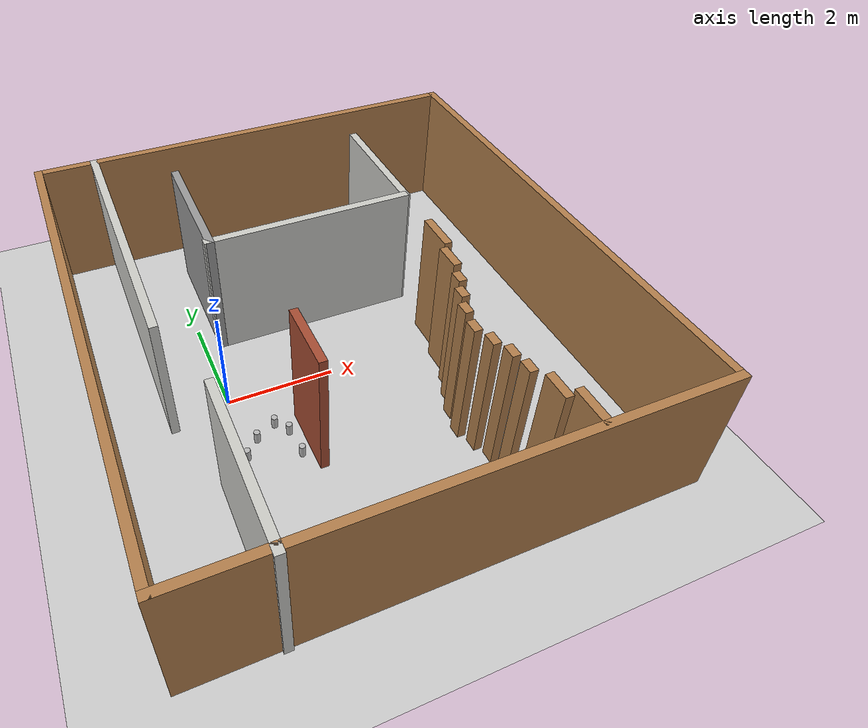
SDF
<sdf version="1.7">
 <world name="default">
  <model name="ground_plane">
   <static>1</static>
   <link name="link">
    <collision name="collision">
     <geometry><plane><normal>0 0 1</normal><size>100 100</size></plane></geometry>
     <surface><friction><ode><mu>100</mu><mu2>50</mu2></ode></friction></surface>
    </collision>
    <visual name="visual">
     <cast_shadows>0</cast_shadows>
     <geometry><plane><normal>0 0 1</normal><size>100 100</size></plane></geometry>
     <material>
      <script><uri>file://media/materials/scripts/gazebo.material</uri><name>Gazebo/Grey</name></script>
     </material>
    </visual>
   </link>
  </model>
  <gravity>0 0 -9.8</gravity>
  <magnetic_field>6e-06 2.3e-05 -4.2e-05</magnetic_field>
  <atmosphere type="adiabatic"/>
  <physics name="default_physics" default="0" type="ode">
   <max_step_size>0.001</max_step_size>
   <real_time_factor>1</real_time_factor>
   <real_time_update_rate>1000</real_time_update_rate>
  </physics>
  <scene><ambient>0.4 0.4 0.4 1</ambient><background>0.7 0.7 0.7 1</background><shadows>1</shadows></scene>
  <audio><device>default</device></audio>
  <spherical_coordinates>
   <surface_model>EARTH_WGS84</surface_model>
   <latitude_deg>0</latitude_deg>
   <longitude_deg>0</longitude_deg>
   <elevation>0</elevation>
   <heading_deg>0</heading_deg>
  </spherical_coordinates>
  <model name="comp4034_environment">
   <pose>2.19918 0.14711 0 0 -0 0</pose>
   <link name="Wall_1">
    <collision name="Wall_1_Collision">
     <geometry><box><size>8.75 0.15 2.5</size></box></geometry>
     <pose>0 0 1.25 0 -0 0</pose>
    </collision>
    <visual name="Wall_1_Visual">
     <pose>0 0 1.25 0 -0 0</pose>
     <geometry><box><size>8.75 0.15 2.5</size></box></geometry>
     <material>
      <script><uri>file://media/materials/scripts/gazebo.material</uri><name>Gazebo/Wood</name></script>
      <ambient>1 1 1 1</ambient>
     </material>
     <meta><layer>0</layer></meta>
    </visual>
    <pose>-0 -4.67766 0 0 -0 0</pose>
   </link>
   <link name="Wall_16">
    <collision name="Wall_16_Collision">
     <geometry><box><size>0.25 0.15 2.5</size></box></geometry>
     <pose>0 0 1.25 0 -0 0</pose>
    </collision>
    <visual name="Wall_16_Visual">
     <pose>0 0 1.25 0 -0 0</pose>
     <geometry><box><size>0.25 0.15 2.5</size></box></geometry>
     <material>
      <script><uri>file://media/materials/scripts/gazebo.material</uri><name>Gazebo/Wood</name></script>
      <ambient>1 1 1 1</ambient>
     </material>
     <meta><layer>0</layer></meta>
    </visual>
    <pose>1.39958 -2.65835 0 0 -0 1.5708</pose>
   </link>
   <link name="Wall_18">
    <collision name="Wall_18_Collision">
     <geometry><box><size>0.25 0.15 2.5</size></box></geometry>
     <pose>0 0 1.25 0 -0 0</pose>
    </collision>
    <visual name="Wall_18_Visual">
     <pose>0 0 1.25 0 -0 0</pose>
     <geometry><box><size>0.25 0.15 2.5</size></box></geometry>
     <material>
      <script><uri>file://media/materials/scripts/gazebo.material</uri><name>Gazebo/Wood</name></script>
      <ambient>1 1 1 1</ambient>
     </material>
     <meta><layer>0</layer></meta>
    </visual>
    <pose>1.28384 -2.30376 0 0 -0 1.5708</pose>
   </link>
   <link name="Wall_21">
    <collision name="Wall_21_Collision">
     <geometry><box><size>0.25 0.15 2.5</size></box></geometry>
     <pose>0 0 1.25 0 -0 0</pose>
    </collision>
    <visual name="Wall_21_Visual">
     <pose>0 0 1.25 0 -0 0</pose>
     <geometry><box><size>0.25 0.15 2.5</size></box></geometry>
     <material>
      <script><uri>file://media/materials/scripts/gazebo.material</uri><name>Gazebo/Wood</name></script>
      <ambient>1 1 1 1</ambient>
     </material>
     <meta><layer>0</layer></meta>
    </visual>
    <pose>1.36975 -1.89289 0 0 -0 1.5708</pose>
   </link>
   <link name="Wall_23">
    <collision name="Wall_23_Collision">
     <geometry><box><size>0.25 0.15 2.5</size></box></geometry>
     <pose>0 0 1.25 0 -0 0</pose>
    </collision>
    <visual name="Wall_23_Visual">
     <pose>0 0 1.25 0 -0 0</pose>
     <geometry><box><size>0.25 0.15 2.5</size></box></geometry>
     <material>
      <script><uri>file://media/materials/scripts/gazebo.material</uri><name>Gazebo/Wood</name></script>
      <ambient>1 1 1 1</ambient>
     </material>
     <meta><layer>0</layer></meta>
    </visual>
    <pose>1.50857 -1.53493 0 0 -0 1.5708</pose>
   </link>
   <link name="Wall_25">
    <collision name="Wall_25_Collision">
     <geometry><box><size>0.25 0.15 2.5</size></box></geometry>
     <pose>0 0 1.25 0 -0 0</pose>
    </collision>
    <visual name="Wall_25_Visual">
     <pose>0 0 1.25 0 -0 0</pose>
     <geometry><box><size>0.25 0.15 2.5</size></box></geometry>
     <material>
      <script><uri>file://media/materials/scripts/gazebo.material</uri><name>Gazebo/Wood</name></script>
      <ambient>1 1 1 1</ambient>
     </material>
     <meta><layer>0</layer></meta>
    </visual>
    <pose>1.65732 -1.18034 0 0 -0 1.5708</pose>
   </link>
   <link name="Wall_27">
    <collision name="Wall_27_Collision">
     <geometry><box><size>0.5 0.15 2.5</size></box></geometry>
     <pose>0 0 1.25 0 -0 0</pose>
    </collision>
    <visual name="Wall_27_Visual">
     <pose>0 0 1.25 0 -0 0</pose>
     <geometry><box><size>0.5 0.15 2.5</size></box></geometry>
     <material>
      <script><uri>file://media/materials/scripts/gazebo.material</uri><name>Gazebo/Wood</name></script>
      <ambient>1 1 1 1</ambient>
     </material>
     <meta><layer>0</layer></meta>
    </visual>
    <pose>1.78619 -0.651034 0 0 -0 1.5708</pose>
   </link>
   <link name="Wall_3">
    <collision name="Wall_3_Collision">
     <geometry><box><size>9.5529 0.15 2.5</size></box></geometry>
     <pose>0 0 1.25 0 -0 0</pose>
    </collision>
    <visual name="Wall_3_Visual">
     <pose>0 0 1.25 0 -0 0</pose>
     <geometry><box><size>9.5529 0.15 2.5</size></box></geometry>
     <material>
      <script><uri>file://media/materials/scripts/gazebo.material</uri><name>Gazebo/Wood</name></script>
      <ambient>1 1 1 1</ambient>
     </material>
     <meta><layer>0</layer></meta>
    </visual>
    <pose>-4.3 0.023792 0 0 -0 1.5708</pose>
   </link>
   <link name="Wall_30">
    <collision name="Wall_30_Collision">
     <geometry><box><size>0.75 0.15 2.5</size></box></geometry>
     <pose>0 0 1.25 0 -0 0</pose>
    </collision>
    <visual name="Wall_30_Visual">
     <pose>0 0 1.25 0 -0 0</pose>
     <geometry><box><size>0.75 0.15 2.5</size></box></geometry>
     <material>
      <script><uri>file://media/materials/scripts/gazebo.material</uri><name>Gazebo/Wood</name></script>
      <ambient>1 1 1 1</ambient>
     </material>
     <meta><layer>0</layer></meta>
    </visual>
    <pose>1.92912 0.051937 0 0 -0 1.5708</pose>
   </link>
   <link name="Wall_32">
    <collision name="Wall_32_Collision">
     <geometry><box><size>2.5 0.15 2.5</size></box></geometry>
     <pose>0 0 1.25 0 -0 0</pose>
    </collision>
    <visual name="Wall_32_Visual">
     <pose>0 0 1.25 0 -0 0</pose>
     <geometry><box><size>2.5 0.15 2.5</size></box></geometry>
     <material>
      <script><uri>file://media/materials/scripts/gazebo.material</uri><name>Gazebo/CeilingTiled</name></script>
      <ambient>0.760784 0.662745 0.627451 1</ambient>
     </material>
     <meta><layer>0</layer></meta>
    </visual>
    <pose>1.9255 2.52077 0 0 -0 1.5708</pose>
   </link>
   <link name="Wall_34">
    <collision name="Wall_34_Collision">
     <geometry><box><size>3.92584 0.15 2.5</size></box></geometry>
     <pose>0 0 1.25 0 -0 0</pose>
    </collision>
    <visual name="Wall_34_Visual">
     <pose>0 0 1.25 0 -0 0</pose>
     <geometry><box><size>3.92584 0.15 2.5</size></box></geometry>
     <material>
      <script><uri>file://media/materials/scripts/gazebo.material</uri><name>Gazebo/CeilingTiled</name></script>
      <ambient>0.760784 0.662745 0.627451 1</ambient>
     </material>
     <meta><layer>0</layer></meta>
    </visual>
    <pose>0.007157 1.34577 0 0 -0 3.14159</pose>
   </link>
   <link name="Wall_4">
    <collision name="Wall_4_Collision">
     <geometry><box><size>8.75 0.15 2.5</size></box></geometry>
     <pose>0 0 1.25 0 -0 0</pose>
    </collision>
    <visual name="Wall_4_Visual">
     <pose>0 0 1.25 0 -0 0</pose>
     <geometry><box><size>8.75 0.15 2.5</size></box></geometry>
     <material>
      <script><uri>file://media/materials/scripts/gazebo.material</uri><name>Gazebo/Wood</name></script>
      <ambient>1 1 1 1</ambient>
     </material>
     <meta><layer>0</layer></meta>
    </visual>
    <pose>-0 4.72524 0 0 -0 0</pose>
   </link>
   <link name="Wall_40">
    <collision name="Wall_40_Collision">
     <geometry><box><size>1.25 0.15 2.5</size></box></geometry>
     <pose>0 0 1.25 0 -0 0</pose>
    </collision>
    <visual name="Wall_40_Visual">
     <pose>0 0 1.25 0 -0 0</pose>
     <geometry><box><size>1.25 0.15 2.5</size></box></geometry>
     <material>
      <script><uri>file://media/materials/scripts/gazebo.material</uri><name>Gazebo/Bricks</name></script>
      <ambient>1 1 1 1</ambient>
     </material>
     <meta><layer>0</layer></meta>
    </visual>
    <pose>-1.12606 -1.50275 0 0 -0 -1.5708</pose>
   </link>
   <link name="Wall_45">
    <collision name="Wall_45_Collision">
     <geometry><box><size>0.5 0.15 2.5</size></box></geometry>
     <pose>0 0 1.25 0 -0 0</pose>
    </collision>
    <visual name="Wall_45_Visual">
     <pose>0 0 1.25 0 -0 0</pose>
     <geometry><box><size>0.5 0.15 2.5</size></box></geometry>
     <material>
      <script><uri>file://media/materials/scripts/gazebo.material</uri><name>Gazebo/Wood</name></script>
      <ambient>1 1 1 1</ambient>
     </material>
     <meta><layer>0</layer></meta>
    </visual>
    <pose>1.76668 -3.82995 0 0 -0 1.5708</pose>
   </link>
   <link name="Wall_5">
    <collision name="Wall_5_Collision">
     <geometry><box><size>9.5 0.15 2.5</size></box></geometry>
     <pose>0 0 1.25 0 -0 0</pose>
    </collision>
    <visual name="Wall_5_Visual">
     <pose>0 0 1.25 0 -0 0</pose>
     <geometry><box><size>9.5 0.15 2.5</size></box></geometry>
     <material>
      <script><uri>file://media/materials/scripts/gazebo.material</uri><name>Gazebo/Wood</name></script>
      <ambient>1 1 1 1</ambient>
     </material>
     <meta><layer>0</layer></meta>
    </visual>
    <pose>4.3 0.050242 0 0 -0 -1.5708</pose>
   </link>
   <link name="Wall_52">
    <collision name="Wall_52_Collision">
     <geometry><box><size>0.75 0.15 2.5</size></box></geometry>
     <pose>0 0 1.25 0 -0 0</pose>
    </collision>
    <visual name="Wall_52_Visual">
     <pose>0 0 1.25 0 -0 0</pose>
     <geometry><box><size>0.75 0.15 2.5</size></box></geometry>
     <material>
      <script><uri>file://media/materials/scripts/gazebo.material</uri><name>Gazebo/Wood</name></script>
      <ambient>1 1 1 1</ambient>
     </material>
     <meta><layer>0</layer></meta>
    </visual>
    <pose>1.98668 -4.35495 0 0 -0 1.5708</pose>
   </link>
   <link name="Wall_56">
    <collision name="Wall_56_Collision">
     <geometry><box><size>0.25 0.15 2.5</size></box></geometry>
     <pose>0 0 1.25 0 -0 0</pose>
    </collision>
    <visual name="Wall_56_Visual">
     <pose>0 0 1.25 0 -0 0</pose>
     <geometry><box><size>0.25 0.15 2.5</size></box></geometry>
     <material>
      <script><uri>file://media/materials/scripts/gazebo.material</uri><name>Gazebo/Wood</name></script>
      <ambient>1 1 1 1</ambient>
     </material>
     <meta><layer>0</layer></meta>
    </visual>
    <pose>1.52668 -2.98495 0 0 -0 -1.5708</pose>
   </link>
   <link name="Wall_58">
    <collision name="Wall_58_Collision">
     <geometry><box><size>0.25 0.15 2.5</size></box></geometry>
     <pose>0 0 1.25 0 -0 0</pose>
    </collision>
    <visual name="Wall_58_Visual">
     <pose>0 0 1.25 0 -0 0</pose>
     <geometry><box><size>0.25 0.15 2.5</size></box></geometry>
     <material>
      <script><uri>file://media/materials/scripts/gazebo.material</uri><name>Gazebo/Wood</name></script>
      <ambient>1 1 1 1</ambient>
     </material>
     <meta><layer>0</layer></meta>
    </visual>
    <pose>1.58668 -3.34495 0 0 -0 -1.5708</pose>
   </link>
   <link name="Wall_60">
    <collision name="Wall_60_Collision">
     <geometry><box><size>2.5 0.15 2.5</size></box></geometry>
     <pose>0 0 1.25 0 -0 0</pose>
    </collision>
    <visual name="Wall_60_Visual">
     <pose>0 0 1.25 0 -0 0</pose>
     <geometry><box><size>2.5 0.15 2.5</size></box></geometry>
     <material>
      <script><uri>file://media/materials/scripts/gazebo.material</uri><name>Gazebo/Grey</name></script>
      <ambient>1 1 1 1</ambient>
     </material>
     <meta><layer>0</layer></meta>
    </visual>
    <pose>-1.85035 2.52077 0 0 -0 1.5708</pose>
   </link>
   <link name="Wall_7">
    <collision name="Wall_7_Collision">
     <geometry><box><size>5.25 0.15 2.5</size></box></geometry>
     <pose>0 0 1.25 0 -0 0</pose>
    </collision>
    <visual name="Wall_7_Visual">
     <pose>0 0 1.25 0 -0 0</pose>
     <geometry><box><size>5.25 0.15 2.5</size></box></geometry>
     <material>
      <script><uri>file://media/materials/scripts/gazebo.material</uri><name>Gazebo/CeilingTiled</name></script>
      <ambient>0.760784 0.662745 0.627451 1</ambient>
     </material>
     <meta><layer>0</layer></meta>
    </visual>
    <pose>-3.23089 2.17626 0 0 -0 -1.5708</pose>
   </link>
   <link name="Wall_9">
    <collision name="Wall_9_Collision">
     <geometry><box><size>3 0.15 2.5</size></box></geometry>
     <pose>0 0 1.25 0 -0 0</pose>
    </collision>
    <visual name="Wall_9_Visual">
     <pose>0 0 1.25 0 -0 0</pose>
     <geometry><box><size>3 0.15 2.5</size></box></geometry>
     <material>
      <script><uri>file://media/materials/scripts/gazebo.material</uri><name>Gazebo/CeilingTiled</name></script>
      <ambient>0.760784 0.662745 0.627451 1</ambient>
     </material>
     <meta><layer>0</layer></meta>
    </visual>
    <pose>-2.74464 -3.30126 0 0 -0 1.5708</pose>
   </link>
   <static>1</static>
  </model>
  <model name="beer">
   <link name="link">
    <pose>0 0 0.115 0 -0 0</pose>
    <inertial>
     <mass>0.39</mass>
     <inertia><ixx>0.00058</ixx><ixy>0</ixy><ixz>0</ixz><iyy>0.00058</iyy><iyz>0</iyz><izz>0.00019</izz></inertia>
    </inertial>
    <collision name="collision">
     <geometry><cylinder><radius>0.055</radius><length>0.23</length></cylinder></geometry>
    </collision>
    <visual name="visual">
     <geometry><cylinder><radius>0.055</radius><length>0.23</length></cylinder></geometry>
     <material>
      <script>
       <uri>model://beer/materials/scripts</uri>
       <uri>model://beer/materials/textures</uri>
       <name>Beer/Diffuse</name>
      </script>
     </material>
    </visual>
   </link>
   <pose>0.213787 -1.0175 -2e-06 1e-06 0 -3.8e-05</pose>
  </model>
  <model name="beer_0">
   <link name="link">
    <pose>0 0 0.115 0 -0 0</pose>
    <inertial>
     <mass>0.39</mass>
     <inertia><ixx>0.00058</ixx><ixy>0</ixy><ixz>0</ixz><iyy>0.00058</iyy><iyz>0</iyz><izz>0.00019</izz></inertia>
    </inertial>
    <collision name="collision">
     <geometry><cylinder><radius>0.055</radius><length>0.23</length></cylinder></geometry>
    </collision>
    <visual name="visual">
     <geometry><cylinder><radius>0.055</radius><length>0.23</length></cylinder></geometry>
     <material>
      <script>
       <uri>model://beer/materials/scripts</uri>
       <uri>model://beer/materials/textures</uri>
       <name>Beer/Diffuse</name>
      </script>
     </material>
    </visual>
   </link>
   <pose>2.29627 2.79932 -7e-06 -0 -0 -3.9e-05</pose>
  </model>
  <model name="beer_1">
   <link name="link">
    <pose>0 0 0.115 0 -0 0</pose>
    <inertial>
     <mass>0.39</mass>
     <inertia><ixx>0.00058</ixx><ixy>0</ixy><ixz>0</ixz><iyy>0.00058</iyy><iyz>0</iyz><izz>0.00019</izz></inertia>
    </inertial>
    <collision name="collision">
     <geometry><cylinder><radius>0.055</radius><length>0.23</length></cylinder></geometry>
    </collision>
    <visual name="visual">
     <geometry><cylinder><radius>0.055</radius><length>0.23</length></cylinder></geometry>
     <material>
      <script>
       <uri>model://beer/materials/scripts</uri>
       <uri>model://beer/materials/textures</uri>
       <name>Beer/Diffuse</name>
      </script>
     </material>
    </visual>
   </link>
   <pose>-0.055249 -1.32092 -2e-06 1e-06 0 -4e-05</pose>
  </model>
  <model name="beer_3">
   <link name="link">
    <pose>0 0 0.115 0 -0 0</pose>
    <inertial>
     <mass>0.39</mass>
     <inertia><ixx>0.00058</ixx><ixy>0</ixy><ixz>0</ixz><iyy>0.00058</iyy><iyz>0</iyz><izz>0.00019</izz></inertia>
    </inertial>
    <collision name="collision">
     <geometry><cylinder><radius>0.055</radius><length>0.23</length></cylinder></geometry>
    </collision>
    <visual name="visual">
     <geometry><cylinder><radius>0.055</radius><length>0.23</length></cylinder></geometry>
     <material>
      <script>
       <uri>model://beer/materials/scripts</uri>
       <uri>model://beer/materials/textures</uri>
       <name>Beer/Diffuse</name>
      </script>
     </material>
    </visual>
   </link>
   <pose>2.50304 2.62456 -7e-06 -0 -0 -3.9e-05</pose>
  </model>
  <model name="beer_4">
   <link name="link">
    <pose>0 0 0.115 0 -0 0</pose>
    <inertial>
     <mass>0.39</mass>
     <inertia><ixx>0.00058</ixx><ixy>0</ixy><ixz>0</ixz><iyy>0.00058</iyy><iyz>0</iyz><izz>0.00019</izz></inertia>
    </inertial>
    <collision name="collision">
     <geometry><cylinder><radius>0.055</radius><length>0.23</length></cylinder></geometry>
    </collision>
    <visual name="visual">
     <geometry><cylinder><radius>0.055</radius><length>0.23</length></cylinder></geometry>
     <material>
      <script>
       <uri>model://beer/materials/scripts</uri>
       <uri>model://beer/materials/textures</uri>
       <name>Beer/Diffuse</name>
      </script>
     </material>
    </visual>
   </link>
   <pose>0.594461 -0.821879 -7e-06 0 0 -4e-05</pose>
  </model>
  <model name="beer_5">
   <link name="link">
    <pose>0 0 0.115 0 -0 0</pose>
    <inertial>
     <mass>0.39</mass>
     <inertia><ixx>0.00058</ixx><ixy>0</ixy><ixz>0</ixz><iyy>0.00058</iyy><iyz>0</iyz><izz>0.00019</izz></inertia>
    </inertial>
    <collision name="collision">
     <geometry><cylinder><radius>0.055</radius><length>0.23</length></cylinder></geometry>
    </collision>
    <visual name="visual">
     <geometry><cylinder><radius>0.055</radius><length>0.23</length></cylinder></geometry>
     <material>
      <script>
       <uri>model://beer/materials/scripts</uri>
       <uri>model://beer/materials/textures</uri>
       <name>Beer/Diffuse</name>
      </script>
     </material>
    </visual>
   </link>
   <pose>0.821637 -1.58876 -2e-06 1e-06 0 -4.1e-05</pose>
  </model>
  <model name="beer_6">
   <link name="link">
    <pose>0 0 0.115 0 -0 0</pose>
    <inertial>
     <mass>0.39</mass>
     <inertia><ixx>0.00058</ixx><ixy>0</ixy><ixz>0</ixz><iyy>0.00058</iyy><iyz>0</iyz><izz>0.00019</izz></inertia>
    </inertial>
    <collision name="collision">
     <geometry><cylinder><radius>0.055</radius><length>0.23</length></cylinder></geometry>
    </collision>
    <visual name="visual">
     <geometry><cylinder><radius>0.055</radius><length>0.23</length></cylinder></geometry>
     <material>
      <script>
       <uri>model://beer/materials/scripts</uri>
       <uri>model://beer/materials/textures</uri>
       <name>Beer/Diffuse</name>
      </script>
     </material>
    </visual>
   </link>
   <pose>2.80314 2.92534 -7e-06 -0 -0 -3.9e-05</pose>
  </model>
  <light name="user_point_light_0" type="point">
   <pose>2.58655 2.83107 1 0 -0 0</pose>
   <diffuse>0.5 0.5 0.5 1</diffuse>
   <specular>0.1 0.1 0.1 1</specular>
   <attenuation>
    <range>20</range>
    <constant>0.5</constant>
    <linear>0.01</linear>
    <quadratic>0.001</quadratic>
   </attenuation>
   <cast_shadows>0</cast_shadows>
   <direction>0 0 -1</direction>
   <spot><inner_angle>0</inner_angle><outer_angle>0</outer_angle><falloff>0</falloff></spot>
  </light>
  <light name="user_point_light_0_clone" type="point">
   <pose>1.44883 -1.56524 3.66701 0 -0 0</pose>
   <diffuse>0.5 0.5 0.5 1</diffuse>
   <specular>0.1 0.1 0.1 1</specular>
   <direction>0 0 -1</direction>
   <attenuation>
    <range>20</range>
    <constant>0.5</constant>
    <linear>0.01</linear>
    <quadratic>0.001</quadratic>
   </attenuation>
   <cast_shadows>0</cast_shadows>
   <spot><inner_angle>0</inner_angle><outer_angle>0</outer_angle><falloff>0</falloff></spot>
  </light>
  <model name="beer_6_clone">
   <link name="link">
    <pose>0 0 0.115 0 -0 0</pose>
    <inertial>
     <mass>0.39</mass>
     <inertia><ixx>0.00058</ixx><ixy>0</ixy><ixz>0</ixz><iyy>0.00058</iyy><iyz>0</iyz><izz>0.00019</izz></inertia>
    </inertial>
    <collision name="collision">
     <geometry><cylinder><radius>0.055</radius><length>0.23</length></cylinder></geometry>
    </collision>
    <visual name="visual">
     <geometry><cylinder><radius>0.055</radius><length>0.23</length></cylinder></geometry>
     <material>
      <script>
       <uri>model://beer/materials/scripts</uri>
       <uri>model://beer/materials/textures</uri>
       <name>Beer/Diffuse</name>
      </script>
     </material>
    </visual>
   </link>
   <pose>0.779 -1.06573 -7e-06 -1e-06 -0 -3.8e-05</pose>
  </model>
  <model name="beer_6_clone_0">
   <link name="link">
    <pose>0 0 0.115 0 -0 0</pose>
    <inertial>
     <mass>0.39</mass>
     <inertia><ixx>0.00058</ixx><ixy>0</ixy><ixz>0</ixz><iyy>0.00058</iyy><iyz>0</iyz><izz>0.00019</izz></inertia>
    </inertial>
    <collision name="collision">
     <geometry><cylinder><radius>0.055</radius><length>0.23</length></cylinder></geometry>
    </collision>
    <visual name="visual">
     <geometry><cylinder><radius>0.055</radius><length>0.23</length></cylinder></geometry>
     <material>
      <script>
       <uri>model://beer/materials/scripts</uri>
       <uri>model://beer/materials/textures</uri>
       <name>Beer/Diffuse</name>
      </script>
     </material>
    </visual>
   </link>
   <pose>4.92848 -3.64853 -3e-06 1e-06 0 -3.8e-05</pose>
  </model>
  <model name="beer_6_clone_1">
   <link name="link">
    <pose>0 0 0.115 0 -0 0</pose>
    <inertial>
     <mass>0.39</mass>
     <inertia><ixx>0.00058</ixx><ixy>0</ixy><ixz>0</ixz><iyy>0.00058</iyy><iyz>0</iyz><izz>0.00019</izz></inertia>
    </inertial>
    <collision name="collision">
     <geometry><cylinder><radius>0.055</radius><length>0.23</length></cylinder></geometry>
    </collision>
    <visual name="visual">
     <geometry><cylinder><radius>0.055</radius><length>0.23</length></cylinder></geometry>
     <material>
      <script>
       <uri>model://beer/materials/scripts</uri>
       <uri>model://beer/materials/textures</uri>
       <name>Beer/Diffuse</name>
      </script>
     </material>
    </visual>
   </link>
   <pose>5.17499 -3.47411 -7e-06 -1e-06 0 -3.7e-05</pose>
  </model>
  <light name="user_spot_light_0" type="spot">
   <pose>1.70437 -3.38644 1 0 -0 0</pose>
   <diffuse>0.5 0.5 0.5 1</diffuse>
   <specular>0.1 0.1 0.1 1</specular>
   <direction>0 0 -1</direction>
   <attenuation>
    <range>20</range>
    <constant>0.5</constant>
    <linear>0.01</linear>
    <quadratic>0.001</quadratic>
   </attenuation>
   <cast_shadows>0</cast_shadows>
   <spot><inner_angle>0.6</inner_angle><outer_angle>1</outer_angle><falloff>1</falloff></spot>
  </light>
  <light name="user_spot_light_0_clone" type="spot">
   <pose>2.34406 -0.505065 0.975541 0 -0 0</pose>
   <diffuse>0.5 0.5 0.5 1</diffuse>
   <specular>0.1 0.1 0.1 1</specular>
   <direction>0 0 -1</direction>
   <attenuation>
    <range>20</range>
    <constant>0.5</constant>
    <linear>0.01</linear>
    <quadratic>0.001</quadratic>
   </attenuation>
   <cast_shadows>0</cast_shadows>
   <spot><inner_angle>0.6</inner_angle><outer_angle>1</outer_angle><falloff>1</falloff></spot>
  </light>
 </world>
</sdf>
